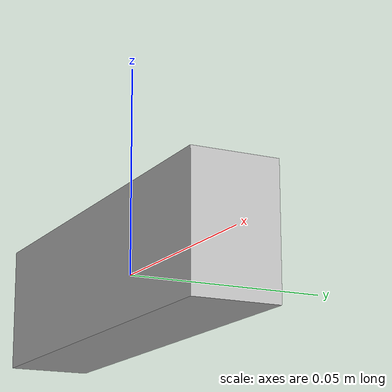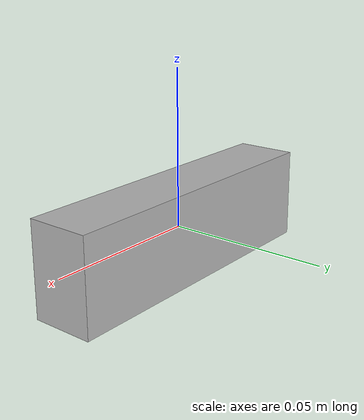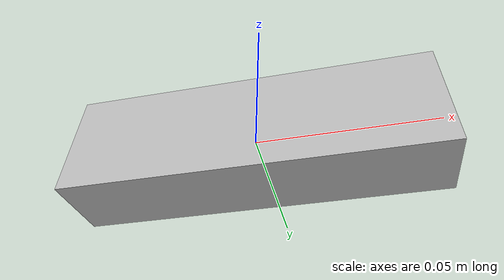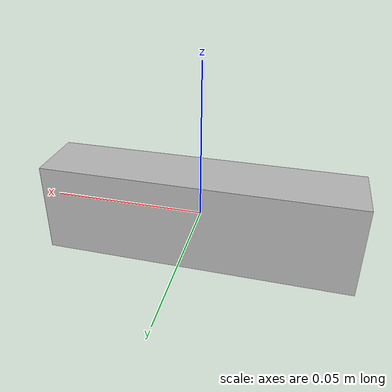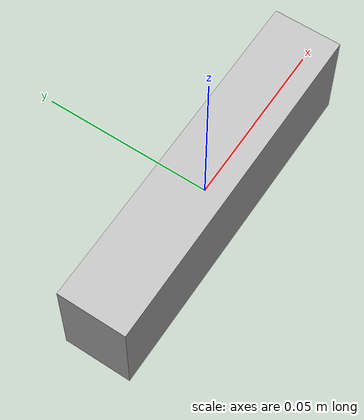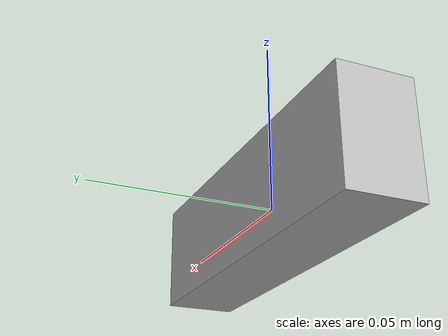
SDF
<?xml version="1.0" ?>
<sdf version="1.6">
  <model name="zed_mini_model">
    <pose>0 0 0 0 0 0</pose>
    <static>true</static>

    <link name="stereo_link">
      <collision name="collision">
        <geometry><box><size>0.10 0.02 0.03</size></box></geometry>
      </collision>
      <visual name="visual">
        <geometry><box><size>0.10 0.02 0.03</size></box></geometry>
      </visual>

      <sensor name="zed_mini_left" type="camera">
        <pose>0 0.0315 0 0 0 0</pose>
        <always_on>true</always_on>
        <update_rate>30</update_rate>
        <camera name="zed_mini_left">
          <horizontal_fov>1.78</horizontal_fov>
          <image>
            <width>1920.0</width>
            <height>1080.0</height>
            <format>R8G8B8</format>
          </image>
          <clip>
            <near>0.3</near>
            <far>20.0</far>
          </clip>
        </camera>
        <plugin name="zed_mini_left_plugin" filename="libgazebo_ros_camera.so">
          <cameraName>zed_mini_left</cameraName>
          <ros>
            <namespace>/zed_mini/left</namespace>
            <argument>image_raw:=image_raw</argument>
            <argument>camera_info:=camera_info</argument>
          </ros>
          <frame_name>zed_mini_left_optical_frame</frame_name>
          <optical_frame_id>zed_mini_left_optical_frame</optical_frame_id>
          <update_rate>30</update_rate>
        </plugin>
      </sensor>

      <sensor name="zed_mini_right" type="camera">
        <pose>0 -0.0315 0 0 0 0</pose>
        <always_on>true</always_on>
        <update_rate>30</update_rate>
        <camera name="zed_mini_right">
          <horizontal_fov>1.780</horizontal_fov>
          <image>
            <width>1920</width>
            <height>1080</height>
            <format>R8G8B8</format>
          </image>
          <clip>
            <near>0.3</near>
            <far>20.0</far>
          </clip>
        </camera>
        <plugin name="zed_mini_right_plugin" filename="libgazebo_ros_camera.so">
          <cameraName>zed_mini_right</cameraName>
          <ros>
            <namespace>/zed_mini/right</namespace>
            <argument>image_raw:=image_raw</argument>
            <argument>camera_info:=camera_info</argument>
          </ros>
          <frame_name>zed_mini_right_optical_frame</frame_name>
          <optical_frame_id>zed_mini_right_optical_frame</optical_frame_id>
          <update_rate>30</update_rate>
        </plugin>
      </sensor>
    </link>
  </model>
</sdf>
